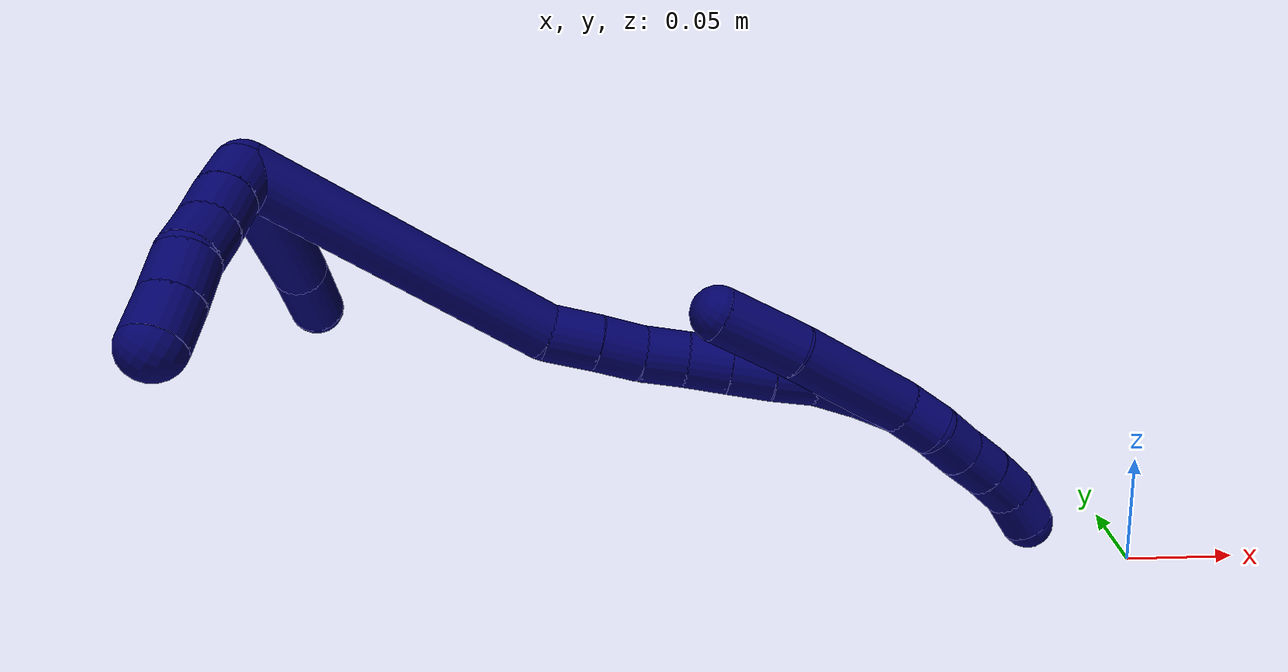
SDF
<sdf version="1.7">
 <world name="default">
  <model name="7">
   <static>0</static>
   <link name="7">
    <collision name="collision-cylinder-e_1_2_8">
     <pose>-0.037699 0.028708 -0.023926 -2.2656 -0.789761 1.45441</pose>
     <geometry><cylinder><radius>0.0125</radius><length>0.106167</length></cylinder></geometry>
     <surface>
      <friction><ode><mu>1.16</mu><mu2>1.16</mu2><slip1>0</slip1><slip2>0</slip2></ode></friction>
      <contact><ode><kp>1e+06</kp><kd>1</kd><max_vel>0</max_vel><min_depth>0.001</min_depth></ode></contact>
     </surface>
    </collision>
    <visual name="visual-cylinder-e_1_2_8">
     <pose>-0.037699 0.028708 -0.023926 -2.2656 -0.789761 1.45441</pose>
     <geometry><cylinder><radius>0.0125</radius><length>0.106167</length></cylinder></geometry>
     <material><ambient>0.003922 0 0.403922 1</ambient></material>
    </visual>
    <collision name="collision-cylinder-e_2_8_6">
     <pose>-0.091452 0.067899 -0.058469 -2.36253 -0.822007 1.6306</pose>
     <geometry><cylinder><radius>0.0125</radius><length>0.043833</length></cylinder></geometry>
     <surface>
      <friction><ode><mu>1.16</mu><mu2>1.16</mu2><slip1>0</slip1><slip2>0</slip2></ode></friction>
      <contact><ode><kp>1e+06</kp><kd>1</kd><max_vel>0</max_vel><min_depth>0.001</min_depth></ode></contact>
     </surface>
    </collision>
    <visual name="visual-cylinder-e_2_8_6">
     <pose>-0.091452 0.067899 -0.058469 -2.36253 -0.822007 1.6306</pose>
     <geometry><cylinder><radius>0.0125</radius><length>0.043833</length></cylinder></geometry>
     <material><ambient>0.003922 0 0.403922 1</ambient></material>
    </visual>
    <collision name="collision-cylinder-e_1_2_9">
     <pose>-0.000563 -0.009955 0.000759 1.49469 -0.056356 -0.052224</pose>
     <geometry><cylinder><radius>0.0125</radius><length>0.02</length></cylinder></geometry>
     <surface>
      <friction><ode><mu>1.16</mu><mu2>1.16</mu2><slip1>0</slip1><slip2>0</slip2></ode></friction>
      <contact><ode><kp>1e+06</kp><kd>1</kd><max_vel>0</max_vel><min_depth>0.001</min_depth></ode></contact>
     </surface>
    </collision>
    <visual name="visual-cylinder-e_1_2_9">
     <pose>-0.000563 -0.009955 0.000759 1.49469 -0.056356 -0.052224</pose>
     <geometry><cylinder><radius>0.0125</radius><length>0.02</length></cylinder></geometry>
     <material><ambient>0.003922 0 0.403922 1</ambient></material>
    </visual>
    <collision name="collision-cylinder-e_2_9_10">
     <pose>-0.001645 -0.029893 0.001787 1.54391 -0.051829 -0.050454</pose>
     <geometry><cylinder><radius>0.0125</radius><length>0.02</length></cylinder></geometry>
     <surface>
      <friction><ode><mu>1.16</mu><mu2>1.16</mu2><slip1>0</slip1><slip2>0</slip2></ode></friction>
      <contact><ode><kp>1e+06</kp><kd>1</kd><max_vel>0</max_vel><min_depth>0.001</min_depth></ode></contact>
     </surface>
    </collision>
    <visual name="visual-cylinder-e_2_9_10">
     <pose>-0.001645 -0.029893 0.001787 1.54391 -0.051829 -0.050454</pose>
     <geometry><cylinder><radius>0.0125</radius><length>0.02</length></cylinder></geometry>
     <material><ambient>0.003922 0 0.403922 1</ambient></material>
    </visual>
    <collision name="collision-cylinder-e_3_10_11">
     <pose>-0.002241 -0.049843 0.002871 1.48908 -0.007854 -0.007237</pose>
     <geometry><cylinder><radius>0.0125</radius><length>0.02</length></cylinder></geometry>
     <surface>
      <friction><ode><mu>1.16</mu><mu2>1.16</mu2><slip1>0</slip1><slip2>0</slip2></ode></friction>
      <contact><ode><kp>1e+06</kp><kd>1</kd><max_vel>0</max_vel><min_depth>0.001</min_depth></ode></contact>
     </surface>
    </collision>
    <visual name="visual-cylinder-e_3_10_11">
     <pose>-0.002241 -0.049843 0.002871 1.48908 -0.007854 -0.007237</pose>
     <geometry><cylinder><radius>0.0125</radius><length>0.02</length></cylinder></geometry>
     <material><ambient>0.003922 0 0.403922 1</ambient></material>
    </visual>
    <collision name="collision-cylinder-e_4_11_12">
     <pose>-0.004456 -0.069522 0.002643 1.67791 -0.215336 -0.23951</pose>
     <geometry><cylinder><radius>0.0125</radius><length>0.02</length></cylinder></geometry>
     <surface>
      <friction><ode><mu>1.16</mu><mu2>1.16</mu2><slip1>0</slip1><slip2>0</slip2></ode></friction>
      <contact><ode><kp>1e+06</kp><kd>1</kd><max_vel>0</max_vel><min_depth>0.001</min_depth></ode></contact>
     </surface>
    </collision>
    <visual name="visual-cylinder-e_4_11_12">
     <pose>-0.004456 -0.069522 0.002643 1.67791 -0.215336 -0.23951</pose>
     <geometry><cylinder><radius>0.0125</radius><length>0.02</length></cylinder></geometry>
     <material><ambient>0.003922 0 0.403922 1</ambient></material>
    </visual>
    <collision name="collision-cylinder-e_5_12_5">
     <pose>-0.008654 -0.088999 0.000946 1.63753 -0.207551 -0.221771</pose>
     <geometry><cylinder><radius>0.0125</radius><length>0.02</length></cylinder></geometry>
     <surface>
      <friction><ode><mu>1.16</mu><mu2>1.16</mu2><slip1>0</slip1><slip2>0</slip2></ode></friction>
      <contact><ode><kp>1e+06</kp><kd>1</kd><max_vel>0</max_vel><min_depth>0.001</min_depth></ode></contact>
     </surface>
    </collision>
    <visual name="visual-cylinder-e_5_12_5">
     <pose>-0.008654 -0.088999 0.000946 1.63753 -0.207551 -0.221771</pose>
     <geometry><cylinder><radius>0.0125</radius><length>0.02</length></cylinder></geometry>
     <material><ambient>0.003922 0 0.403922 1</ambient></material>
    </visual>
    <collision name="collision-cylinder-e_1_2_13">
     <pose>0.002436 2.6e-05 -0.068537 -3.14121 0.035521 -3.11991</pose>
     <geometry><cylinder><radius>0.0125</radius><length>0.13716</length></cylinder></geometry>
     <surface>
      <friction><ode><mu>1.16</mu><mu2>1.16</mu2><slip1>0</slip1><slip2>0</slip2></ode></friction>
      <contact><ode><kp>1e+06</kp><kd>1</kd><max_vel>0</max_vel><min_depth>0.001</min_depth></ode></contact>
     </surface>
    </collision>
    <visual name="visual-cylinder-e_1_2_13">
     <pose>0.002436 2.6e-05 -0.068537 -3.14121 0.035521 -3.11991</pose>
     <geometry><cylinder><radius>0.0125</radius><length>0.13716</length></cylinder></geometry>
     <material><ambient>0.003922 0 0.403922 1</ambient></material>
    </visual>
    <collision name="collision-cylinder-e_2_13_14">
     <pose>0.00858 0.000917 -0.147799 -3.06123 0.331942 -2.6705</pose>
     <geometry><cylinder><radius>0.0125</radius><length>0.022763</length></cylinder></geometry>
     <surface>
      <friction><ode><mu>1.16</mu><mu2>1.16</mu2><slip1>0</slip1><slip2>0</slip2></ode></friction>
      <contact><ode><kp>1e+06</kp><kd>1</kd><max_vel>0</max_vel><min_depth>0.001</min_depth></ode></contact>
     </surface>
    </collision>
    <visual name="visual-cylinder-e_2_13_14">
     <pose>0.00858 0.000917 -0.147799 -3.06123 0.331942 -2.6705</pose>
     <geometry><cylinder><radius>0.0125</radius><length>0.022763</length></cylinder></geometry>
     <material><ambient>0.003922 0 0.403922 1</ambient></material>
    </visual>
    <collision name="collision-cylinder-e_3_14_15">
     <pose>0.015165 0.002567 -0.168106 -3.05964 0.290668 -2.59536</pose>
     <geometry><cylinder><radius>0.0125</radius><length>0.020071</length></cylinder></geometry>
     <surface>
      <friction><ode><mu>1.16</mu><mu2>1.16</mu2><slip1>0</slip1><slip2>0</slip2></ode></friction>
      <contact><ode><kp>1e+06</kp><kd>1</kd><max_vel>0</max_vel><min_depth>0.001</min_depth></ode></contact>
     </surface>
    </collision>
    <visual name="visual-cylinder-e_3_14_15">
     <pose>0.015165 0.002567 -0.168106 -3.05964 0.290668 -2.59536</pose>
     <geometry><cylinder><radius>0.0125</radius><length>0.020071</length></cylinder></geometry>
     <material><ambient>0.003922 0 0.403922 1</ambient></material>
    </visual>
    <collision name="collision-cylinder-e_4_15_16">
     <pose>0.022022 0.004359 -0.186808 -3.03188 0.409379 -2.6244</pose>
     <geometry><cylinder><radius>0.0125</radius><length>0.020001</length></cylinder></geometry>
     <surface>
      <friction><ode><mu>1.16</mu><mu2>1.16</mu2><slip1>0</slip1><slip2>0</slip2></ode></friction>
      <contact><ode><kp>1e+06</kp><kd>1</kd><max_vel>0</max_vel><min_depth>0.001</min_depth></ode></contact>
     </surface>
    </collision>
    <visual name="visual-cylinder-e_4_15_16">
     <pose>0.022022 0.004359 -0.186808 -3.03188 0.409379 -2.6244</pose>
     <geometry><cylinder><radius>0.0125</radius><length>0.020001</length></cylinder></geometry>
     <material><ambient>0.003922 0 0.403922 1</ambient></material>
    </visual>
    <collision name="collision-cylinder-e_5_16_17">
     <pose>0.030551 0.005086 -0.204829 3.11038 0.472116 3.01201</pose>
     <geometry><cylinder><radius>0.0125</radius><length>0.020002</length></cylinder></geometry>
     <surface>
      <friction><ode><mu>1.16</mu><mu2>1.16</mu2><slip1>0</slip1><slip2>0</slip2></ode></friction>
      <contact><ode><kp>1e+06</kp><kd>1</kd><max_vel>0</max_vel><min_depth>0.001</min_depth></ode></contact>
     </surface>
    </collision>
    <visual name="visual-cylinder-e_5_16_17">
     <pose>0.030551 0.005086 -0.204829 3.11038 0.472116 3.01201</pose>
     <geometry><cylinder><radius>0.0125</radius><length>0.020002</length></cylinder></geometry>
     <material><ambient>0.003922 0 0.403922 1</ambient></material>
    </visual>
    <collision name="collision-cylinder-e_6_17_18">
     <pose>0.039614 0.004639 -0.222653 3.12272 0.468421 3.06254</pose>
     <geometry><cylinder><radius>0.0125</radius><length>0.02</length></cylinder></geometry>
     <surface>
      <friction><ode><mu>1.16</mu><mu2>1.16</mu2><slip1>0</slip1><slip2>0</slip2></ode></friction>
      <contact><ode><kp>1e+06</kp><kd>1</kd><max_vel>0</max_vel><min_depth>0.001</min_depth></ode></contact>
     </surface>
    </collision>
    <visual name="visual-cylinder-e_6_17_18">
     <pose>0.039614 0.004639 -0.222653 3.12272 0.468421 3.06254</pose>
     <geometry><cylinder><radius>0.0125</radius><length>0.02</length></cylinder></geometry>
     <material><ambient>0.003922 0 0.403922 1</ambient></material>
    </visual>
    <collision name="collision-cylinder-e_7_18_19">
     <pose>0.0489 0.004797 -0.240357 -3.10445 0.497404 -2.99557</pose>
     <geometry><cylinder><radius>0.0125</radius><length>0.020002</length></cylinder></geometry>
     <surface>
      <friction><ode><mu>1.16</mu><mu2>1.16</mu2><slip1>0</slip1><slip2>0</slip2></ode></friction>
      <contact><ode><kp>1e+06</kp><kd>1</kd><max_vel>0</max_vel><min_depth>0.001</min_depth></ode></contact>
     </surface>
    </collision>
    <visual name="visual-cylinder-e_7_18_19">
     <pose>0.0489 0.004797 -0.240357 -3.10445 0.497404 -2.99557</pose>
     <geometry><cylinder><radius>0.0125</radius><length>0.020002</length></cylinder></geometry>
     <material><ambient>0.003922 0 0.403922 1</ambient></material>
    </visual>
    <collision name="collision-cylinder-e_8_19_20">
     <pose>0.057326 0.004062 -0.258389 3.02731 0.37404 2.55447</pose>
     <geometry><cylinder><radius>0.0125</radius><length>0.02</length></cylinder></geometry>
     <surface>
      <friction><ode><mu>1.16</mu><mu2>1.16</mu2><slip1>0</slip1><slip2>0</slip2></ode></friction>
      <contact><ode><kp>1e+06</kp><kd>1</kd><max_vel>0</max_vel><min_depth>0.001</min_depth></ode></contact>
     </surface>
    </collision>
    <visual name="visual-cylinder-e_8_19_20">
     <pose>0.057326 0.004062 -0.258389 3.02731 0.37404 2.55447</pose>
     <geometry><cylinder><radius>0.0125</radius><length>0.02</length></cylinder></geometry>
     <material><ambient>0.003922 0 0.403922 1</ambient></material>
    </visual>
    <collision name="collision-cylinder-e_9_20_1">
     <pose>0.064313 0.000979 -0.276846 2.9255 0.339769 2.0139</pose>
     <geometry><cylinder><radius>0.0125</radius><length>0.020001</length></cylinder></geometry>
     <surface>
      <friction><ode><mu>1.16</mu><mu2>1.16</mu2><slip1>0</slip1><slip2>0</slip2></ode></friction>
      <contact><ode><kp>1e+06</kp><kd>1</kd><max_vel>0</max_vel><min_depth>0.001</min_depth></ode></contact>
     </surface>
    </collision>
    <visual name="visual-cylinder-e_9_20_1">
     <pose>0.064313 0.000979 -0.276846 2.9255 0.339769 2.0139</pose>
     <geometry><cylinder><radius>0.0125</radius><length>0.020001</length></cylinder></geometry>
     <material><ambient>0.003922 0 0.403922 1</ambient></material>
    </visual>
    <collision name="collision-cylinder-e_1_1_21">
     <pose>0.068116 -0.002504 -0.295937 2.9948 0.047013 0.618974</pose>
     <geometry><cylinder><radius>0.0125</radius><length>0.02</length></cylinder></geometry>
     <surface>
      <friction><ode><mu>1.16</mu><mu2>1.16</mu2><slip1>0</slip1><slip2>0</slip2></ode></friction>
      <contact><ode><kp>1e+06</kp><kd>1</kd><max_vel>0</max_vel><min_depth>0.001</min_depth></ode></contact>
     </surface>
    </collision>
    <visual name="visual-cylinder-e_1_1_21">
     <pose>0.068116 -0.002504 -0.295937 2.9948 0.047013 0.618974</pose>
     <geometry><cylinder><radius>0.0125</radius><length>0.02</length></cylinder></geometry>
     <material><ambient>0.003922 0 0.403922 1</ambient></material>
    </visual>
    <collision name="collision-cylinder-e_2_21_22">
     <pose>0.066929 -0.003282 -0.315657 -3.07233 -0.16647 2.35439</pose>
     <geometry><cylinder><radius>0.0125</radius><length>0.02</length></cylinder></geometry>
     <surface>
      <friction><ode><mu>1.16</mu><mu2>1.16</mu2><slip1>0</slip1><slip2>0</slip2></ode></friction>
      <contact><ode><kp>1e+06</kp><kd>1</kd><max_vel>0</max_vel><min_depth>0.001</min_depth></ode></contact>
     </surface>
    </collision>
    <visual name="visual-cylinder-e_2_21_22">
     <pose>0.066929 -0.003282 -0.315657 -3.07233 -0.16647 2.35439</pose>
     <geometry><cylinder><radius>0.0125</radius><length>0.02</length></cylinder></geometry>
     <material><ambient>0.003922 0 0.403922 1</ambient></material>
    </visual>
    <collision name="collision-cylinder-e_3_22_23">
     <pose>0.064039 -0.001828 -0.335389 -3.06379 -0.123549 2.01829</pose>
     <geometry><cylinder><radius>0.0125</radius><length>0.02</length></cylinder></geometry>
     <surface>
      <friction><ode><mu>1.16</mu><mu2>1.16</mu2><slip1>0</slip1><slip2>0</slip2></ode></friction>
      <contact><ode><kp>1e+06</kp><kd>1</kd><max_vel>0</max_vel><min_depth>0.001</min_depth></ode></contact>
     </surface>
    </collision>
    <visual name="visual-cylinder-e_3_22_23">
     <pose>0.064039 -0.001828 -0.335389 -3.06379 -0.123549 2.01829</pose>
     <geometry><cylinder><radius>0.0125</radius><length>0.02</length></cylinder></geometry>
     <material><ambient>0.003922 0 0.403922 1</ambient></material>
    </visual>
    <collision name="collision-cylinder-e_4_23_24">
     <pose>0.060965 -0.000714 -0.355105 -3.10673 -0.185209 2.77051</pose>
     <geometry><cylinder><radius>0.0125</radius><length>0.02</length></cylinder></geometry>
     <surface>
      <friction><ode><mu>1.16</mu><mu2>1.16</mu2><slip1>0</slip1><slip2>0</slip2></ode></friction>
      <contact><ode><kp>1e+06</kp><kd>1</kd><max_vel>0</max_vel><min_depth>0.001</min_depth></ode></contact>
     </surface>
    </collision>
    <visual name="visual-cylinder-e_4_23_24">
     <pose>0.060965 -0.000714 -0.355105 -3.10673 -0.185209 2.77051</pose>
     <geometry><cylinder><radius>0.0125</radius><length>0.02</length></cylinder></geometry>
     <material><ambient>0.003922 0 0.403922 1</ambient></material>
    </visual>
    <collision name="collision-cylinder-e_5_24_4">
     <pose>0.055573 -0.001963 -0.37414 2.97055 -0.363008 -2.26755</pose>
     <geometry><cylinder><radius>0.0125</radius><length>0.02</length></cylinder></geometry>
     <surface>
      <friction><ode><mu>1.16</mu><mu2>1.16</mu2><slip1>0</slip1><slip2>0</slip2></ode></friction>
      <contact><ode><kp>1e+06</kp><kd>1</kd><max_vel>0</max_vel><min_depth>0.001</min_depth></ode></contact>
     </surface>
    </collision>
    <visual name="visual-cylinder-e_5_24_4">
     <pose>0.055573 -0.001963 -0.37414 2.97055 -0.363008 -2.26755</pose>
     <geometry><cylinder><radius>0.0125</radius><length>0.02</length></cylinder></geometry>
     <material><ambient>0.003922 0 0.403922 1</ambient></material>
    </visual>
    <collision name="collision-cylinder-e_1_1_25">
     <pose>0.067058 -0.003485 -0.255849 0.080674 -0.019393 -0.000783</pose>
     <geometry><cylinder><radius>0.0125</radius><length>0.060621</length></cylinder></geometry>
     <surface>
      <friction><ode><mu>1.16</mu><mu2>1.16</mu2><slip1>0</slip1><slip2>0</slip2></ode></friction>
      <contact><ode><kp>1e+06</kp><kd>1</kd><max_vel>0</max_vel><min_depth>0.001</min_depth></ode></contact>
     </surface>
    </collision>
    <visual name="visual-cylinder-e_1_1_25">
     <pose>0.067058 -0.003485 -0.255849 0.080674 -0.019393 -0.000783</pose>
     <geometry><cylinder><radius>0.0125</radius><length>0.060621</length></cylinder></geometry>
     <material><ambient>0.003922 0 0.403922 1</ambient></material>
    </visual>
    <collision name="collision-cylinder-e_2_25_3">
     <pose>0.064078 -0.005962 -0.206099 0.001788 -0.121814 -0.000109</pose>
     <geometry><cylinder><radius>0.0125</radius><length>0.039379</length></cylinder></geometry>
     <surface>
      <friction><ode><mu>1.16</mu><mu2>1.16</mu2><slip1>0</slip1><slip2>0</slip2></ode></friction>
      <contact><ode><kp>1e+06</kp><kd>1</kd><max_vel>0</max_vel><min_depth>0.001</min_depth></ode></contact>
     </surface>
    </collision>
    <visual name="visual-cylinder-e_2_25_3">
     <pose>0.064078 -0.005962 -0.206099 0.001788 -0.121814 -0.000109</pose>
     <geometry><cylinder><radius>0.0125</radius><length>0.039379</length></cylinder></geometry>
     <material><ambient>0.003922 0 0.403922 1</ambient></material>
    </visual>
    <collision name="collision-sphere-3">
     <pose>0.061685 -0.005997 -0.186556 0 -0 0</pose>
     <geometry><sphere><radius>0.0125</radius></sphere></geometry>
     <surface>
      <friction><ode><mu>1.16</mu><mu2>1.16</mu2><slip1>0</slip1><slip2>0</slip2></ode></friction>
      <contact><ode><kp>1e+06</kp><kd>1</kd><max_vel>0</max_vel><min_depth>0.001</min_depth></ode></contact>
     </surface>
    </collision>
    <visual name="visual-sphere-3">
     <pose>0.061685 -0.005997 -0.186556 0 -0 0</pose>
     <geometry><sphere><radius>0.0125</radius></sphere></geometry>
     <material><ambient>0.003922 0 0.403922 1</ambient></material>
    </visual>
    <collision name="collision-sphere-25">
     <pose>0.06647 -0.005927 -0.225643 0 -0 0</pose>
     <geometry><sphere><radius>0.0125</radius></sphere></geometry>
     <surface>
      <friction><ode><mu>1.16</mu><mu2>1.16</mu2><slip1>0</slip1><slip2>0</slip2></ode></friction>
      <contact><ode><kp>1e+06</kp><kd>1</kd><max_vel>0</max_vel><min_depth>0.001</min_depth></ode></contact>
     </surface>
    </collision>
    <visual name="visual-sphere-25">
     <pose>0.06647 -0.005927 -0.225643 0 -0 0</pose>
     <geometry><sphere><radius>0.0125</radius></sphere></geometry>
     <material><ambient>0.003922 0 0.403922 1</ambient></material>
    </visual>
    <collision name="collision-sphere-4">
     <pose>0.052022 -0.003554 -0.383352 0 -0 0</pose>
     <geometry><sphere><radius>0.0125</radius></sphere></geometry>
     <surface>
      <friction><ode><mu>1.16</mu><mu2>1.16</mu2><slip1>0</slip1><slip2>0</slip2></ode></friction>
      <contact><ode><kp>1e+06</kp><kd>1</kd><max_vel>0</max_vel><min_depth>0.001</min_depth></ode></contact>
     </surface>
    </collision>
    <visual name="visual-sphere-4">
     <pose>0.052022 -0.003554 -0.383352 0 -0 0</pose>
     <geometry><sphere><radius>0.0125</radius></sphere></geometry>
     <material><ambient>0.003922 0 0.403922 1</ambient></material>
    </visual>
    <collision name="collision-sphere-24">
     <pose>0.059124 -0.000372 -0.364928 0 -0 0</pose>
     <geometry><sphere><radius>0.0125</radius></sphere></geometry>
     <surface>
      <friction><ode><mu>1.16</mu><mu2>1.16</mu2><slip1>0</slip1><slip2>0</slip2></ode></friction>
      <contact><ode><kp>1e+06</kp><kd>1</kd><max_vel>0</max_vel><min_depth>0.001</min_depth></ode></contact>
     </surface>
    </collision>
    <visual name="visual-sphere-24">
     <pose>0.059124 -0.000372 -0.364928 0 -0 0</pose>
     <geometry><sphere><radius>0.0125</radius></sphere></geometry>
     <material><ambient>0.003922 0 0.403922 1</ambient></material>
    </visual>
    <collision name="collision-sphere-23">
     <pose>0.062807 -0.001057 -0.345282 0 -0 0</pose>
     <geometry><sphere><radius>0.0125</radius></sphere></geometry>
     <surface>
      <friction><ode><mu>1.16</mu><mu2>1.16</mu2><slip1>0</slip1><slip2>0</slip2></ode></friction>
      <contact><ode><kp>1e+06</kp><kd>1</kd><max_vel>0</max_vel><min_depth>0.001</min_depth></ode></contact>
     </surface>
    </collision>
    <visual name="visual-sphere-23">
     <pose>0.062807 -0.001057 -0.345282 0 -0 0</pose>
     <geometry><sphere><radius>0.0125</radius></sphere></geometry>
     <material><ambient>0.003922 0 0.403922 1</ambient></material>
    </visual>
    <collision name="collision-sphere-22">
     <pose>0.065272 -0.0026 -0.325495 0 -0 0</pose>
     <geometry><sphere><radius>0.0125</radius></sphere></geometry>
     <surface>
      <friction><ode><mu>1.16</mu><mu2>1.16</mu2><slip1>0</slip1><slip2>0</slip2></ode></friction>
      <contact><ode><kp>1e+06</kp><kd>1</kd><max_vel>0</max_vel><min_depth>0.001</min_depth></ode></contact>
     </surface>
    </collision>
    <visual name="visual-sphere-22">
     <pose>0.065272 -0.0026 -0.325495 0 -0 0</pose>
     <geometry><sphere><radius>0.0125</radius></sphere></geometry>
     <material><ambient>0.003922 0 0.403922 1</ambient></material>
    </visual>
    <collision name="collision-sphere-21">
     <pose>0.068586 -0.003965 -0.305819 0 -0 0</pose>
     <geometry><sphere><radius>0.0125</radius></sphere></geometry>
     <surface>
      <friction><ode><mu>1.16</mu><mu2>1.16</mu2><slip1>0</slip1><slip2>0</slip2></ode></friction>
      <contact><ode><kp>1e+06</kp><kd>1</kd><max_vel>0</max_vel><min_depth>0.001</min_depth></ode></contact>
     </surface>
    </collision>
    <visual name="visual-sphere-21">
     <pose>0.068586 -0.003965 -0.305819 0 -0 0</pose>
     <geometry><sphere><radius>0.0125</radius></sphere></geometry>
     <material><ambient>0.003922 0 0.403922 1</ambient></material>
    </visual>
    <collision name="collision-sphere-1">
     <pose>0.067646 -0.001043 -0.286055 0 -0 0</pose>
     <geometry><sphere><radius>0.0125</radius></sphere></geometry>
     <surface>
      <friction><ode><mu>1.16</mu><mu2>1.16</mu2><slip1>0</slip1><slip2>0</slip2></ode></friction>
      <contact><ode><kp>1e+06</kp><kd>1</kd><max_vel>0</max_vel><min_depth>0.001</min_depth></ode></contact>
     </surface>
    </collision>
    <visual name="visual-sphere-1">
     <pose>0.067646 -0.001043 -0.286055 0 -0 0</pose>
     <geometry><sphere><radius>0.0125</radius></sphere></geometry>
     <material><ambient>0.003922 0 0.403922 1</ambient></material>
    </visual>
    <collision name="collision-sphere-11">
     <pose>-0.00232 -0.059809 0.003688 0 -0 0</pose>
     <geometry><sphere><radius>0.0125</radius></sphere></geometry>
     <surface>
      <friction><ode><mu>1.16</mu><mu2>1.16</mu2><slip1>0</slip1><slip2>0</slip2></ode></friction>
      <contact><ode><kp>1e+06</kp><kd>1</kd><max_vel>0</max_vel><min_depth>0.001</min_depth></ode></contact>
     </surface>
    </collision>
    <visual name="visual-sphere-11">
     <pose>-0.00232 -0.059809 0.003688 0 -0 0</pose>
     <geometry><sphere><radius>0.0125</radius></sphere></geometry>
     <material><ambient>0.003922 0 0.403922 1</ambient></material>
    </visual>
    <collision name="collision-sphere-10">
     <pose>-0.002163 -0.039876 0.002055 0 -0 0</pose>
     <geometry><sphere><radius>0.0125</radius></sphere></geometry>
     <surface>
      <friction><ode><mu>1.16</mu><mu2>1.16</mu2><slip1>0</slip1><slip2>0</slip2></ode></friction>
      <contact><ode><kp>1e+06</kp><kd>1</kd><max_vel>0</max_vel><min_depth>0.001</min_depth></ode></contact>
     </surface>
    </collision>
    <visual name="visual-sphere-10">
     <pose>-0.002163 -0.039876 0.002055 0 -0 0</pose>
     <geometry><sphere><radius>0.0125</radius></sphere></geometry>
     <material><ambient>0.003922 0 0.403922 1</ambient></material>
    </visual>
    <collision name="collision-sphere-6">
     <pose>-0.107506 0.078382 -0.069086 0 -0 0</pose>
     <geometry><sphere><radius>0.0125</radius></sphere></geometry>
     <surface>
      <friction><ode><mu>1.16</mu><mu2>1.16</mu2><slip1>0</slip1><slip2>0</slip2></ode></friction>
      <contact><ode><kp>1e+06</kp><kd>1</kd><max_vel>0</max_vel><min_depth>0.001</min_depth></ode></contact>
     </surface>
    </collision>
    <visual name="visual-sphere-6">
     <pose>-0.107506 0.078382 -0.069086 0 -0 0</pose>
     <geometry><sphere><radius>0.0125</radius></sphere></geometry>
     <material><ambient>0.003922 0 0.403922 1</ambient></material>
    </visual>
    <collision name="collision-sphere-9">
     <pose>-0.001127 -0.01991 0.001518 0 -0 0</pose>
     <geometry><sphere><radius>0.0125</radius></sphere></geometry>
     <surface>
      <friction><ode><mu>1.16</mu><mu2>1.16</mu2><slip1>0</slip1><slip2>0</slip2></ode></friction>
      <contact><ode><kp>1e+06</kp><kd>1</kd><max_vel>0</max_vel><min_depth>0.001</min_depth></ode></contact>
     </surface>
    </collision>
    <visual name="visual-sphere-9">
     <pose>-0.001127 -0.01991 0.001518 0 -0 0</pose>
     <geometry><sphere><radius>0.0125</radius></sphere></geometry>
     <material><ambient>0.003922 0 0.403922 1</ambient></material>
    </visual>
    <collision name="collision-sphere-2">
     <geometry><sphere><radius>0.0125</radius></sphere></geometry>
     <surface>
      <friction><ode><mu>1.16</mu><mu2>1.16</mu2><slip1>0</slip1><slip2>0</slip2></ode></friction>
      <contact><ode><kp>1e+06</kp><kd>1</kd><max_vel>0</max_vel><min_depth>0.001</min_depth></ode></contact>
     </surface>
    </collision>
    <visual name="visual-sphere-2">
     <geometry><sphere><radius>0.0125</radius></sphere></geometry>
     <material><ambient>0.003922 0 0.403922 1</ambient></material>
    </visual>
    <collision name="collision-sphere-19">
     <pose>0.053672 0.005124 -0.24914 0 -0 0</pose>
     <geometry><sphere><radius>0.0125</radius></sphere></geometry>
     <surface>
      <friction><ode><mu>1.16</mu><mu2>1.16</mu2><slip1>0</slip1><slip2>0</slip2></ode></friction>
      <contact><ode><kp>1e+06</kp><kd>1</kd><max_vel>0</max_vel><min_depth>0.001</min_depth></ode></contact>
     </surface>
    </collision>
    <visual name="visual-sphere-19">
     <pose>0.053672 0.005124 -0.24914 0 -0 0</pose>
     <geometry><sphere><radius>0.0125</radius></sphere></geometry>
     <material><ambient>0.003922 0 0.403922 1</ambient></material>
    </visual>
    <collision name="collision-sphere-8">
     <pose>-0.075398 0.057416 -0.047853 0 -0 0</pose>
     <geometry><sphere><radius>0.0125</radius></sphere></geometry>
     <surface>
      <friction><ode><mu>1.16</mu><mu2>1.16</mu2><slip1>0</slip1><slip2>0</slip2></ode></friction>
      <contact><ode><kp>1e+06</kp><kd>1</kd><max_vel>0</max_vel><min_depth>0.001</min_depth></ode></contact>
     </surface>
    </collision>
    <visual name="visual-sphere-8">
     <pose>-0.075398 0.057416 -0.047853 0 -0 0</pose>
     <geometry><sphere><radius>0.0125</radius></sphere></geometry>
     <material><ambient>0.003922 0 0.403922 1</ambient></material>
    </visual>
    <collision name="collision-sphere-12">
     <pose>-0.006593 -0.079235 0.001599 0 -0 0</pose>
     <geometry><sphere><radius>0.0125</radius></sphere></geometry>
     <surface>
      <friction><ode><mu>1.16</mu><mu2>1.16</mu2><slip1>0</slip1><slip2>0</slip2></ode></friction>
      <contact><ode><kp>1e+06</kp><kd>1</kd><max_vel>0</max_vel><min_depth>0.001</min_depth></ode></contact>
     </surface>
    </collision>
    <visual name="visual-sphere-12">
     <pose>-0.006593 -0.079235 0.001599 0 -0 0</pose>
     <geometry><sphere><radius>0.0125</radius></sphere></geometry>
     <material><ambient>0.003922 0 0.403922 1</ambient></material>
    </visual>
    <collision name="collision-sphere-5">
     <pose>-0.010715 -0.098762 0.000294 0 -0 0</pose>
     <geometry><sphere><radius>0.0125</radius></sphere></geometry>
     <surface>
      <friction><ode><mu>1.16</mu><mu2>1.16</mu2><slip1>0</slip1><slip2>0</slip2></ode></friction>
      <contact><ode><kp>1e+06</kp><kd>1</kd><max_vel>0</max_vel><min_depth>0.001</min_depth></ode></contact>
     </surface>
    </collision>
    <visual name="visual-sphere-5">
     <pose>-0.010715 -0.098762 0.000294 0 -0 0</pose>
     <geometry><sphere><radius>0.0125</radius></sphere></geometry>
     <material><ambient>0.003922 0 0.403922 1</ambient></material>
    </visual>
    <collision name="collision-sphere-13">
     <pose>0.004871 5.3e-05 -0.137073 0 -0 0</pose>
     <geometry><sphere><radius>0.0125</radius></sphere></geometry>
     <surface>
      <friction><ode><mu>1.16</mu><mu2>1.16</mu2><slip1>0</slip1><slip2>0</slip2></ode></friction>
      <contact><ode><kp>1e+06</kp><kd>1</kd><max_vel>0</max_vel><min_depth>0.001</min_depth></ode></contact>
     </surface>
    </collision>
    <visual name="visual-sphere-13">
     <pose>0.004871 5.3e-05 -0.137073 0 -0 0</pose>
     <geometry><sphere><radius>0.0125</radius></sphere></geometry>
     <material><ambient>0.003922 0 0.403922 1</ambient></material>
    </visual>
    <collision name="collision-sphere-14">
     <pose>0.012289 0.00178 -0.158524 0 -0 0</pose>
     <geometry><sphere><radius>0.0125</radius></sphere></geometry>
     <surface>
      <friction><ode><mu>1.16</mu><mu2>1.16</mu2><slip1>0</slip1><slip2>0</slip2></ode></friction>
      <contact><ode><kp>1e+06</kp><kd>1</kd><max_vel>0</max_vel><min_depth>0.001</min_depth></ode></contact>
     </surface>
    </collision>
    <visual name="visual-sphere-14">
     <pose>0.012289 0.00178 -0.158524 0 -0 0</pose>
     <geometry><sphere><radius>0.0125</radius></sphere></geometry>
     <material><ambient>0.003922 0 0.403922 1</ambient></material>
    </visual>
    <collision name="collision-sphere-15">
     <pose>0.018041 0.003354 -0.177689 0 -0 0</pose>
     <geometry><sphere><radius>0.0125</radius></sphere></geometry>
     <surface>
      <friction><ode><mu>1.16</mu><mu2>1.16</mu2><slip1>0</slip1><slip2>0</slip2></ode></friction>
      <contact><ode><kp>1e+06</kp><kd>1</kd><max_vel>0</max_vel><min_depth>0.001</min_depth></ode></contact>
     </surface>
    </collision>
    <visual name="visual-sphere-15">
     <pose>0.018041 0.003354 -0.177689 0 -0 0</pose>
     <geometry><sphere><radius>0.0125</radius></sphere></geometry>
     <material><ambient>0.003922 0 0.403922 1</ambient></material>
    </visual>
    <collision name="collision-sphere-16">
     <pose>0.026003 0.005364 -0.195927 0 -0 0</pose>
     <geometry><sphere><radius>0.0125</radius></sphere></geometry>
     <surface>
      <friction><ode><mu>1.16</mu><mu2>1.16</mu2><slip1>0</slip1><slip2>0</slip2></ode></friction>
      <contact><ode><kp>1e+06</kp><kd>1</kd><max_vel>0</max_vel><min_depth>0.001</min_depth></ode></contact>
     </surface>
    </collision>
    <visual name="visual-sphere-16">
     <pose>0.026003 0.005364 -0.195927 0 -0 0</pose>
     <geometry><sphere><radius>0.0125</radius></sphere></geometry>
     <material><ambient>0.003922 0 0.403922 1</ambient></material>
    </visual>
    <collision name="collision-sphere-17">
     <pose>0.035099 0.004808 -0.213732 0 -0 0</pose>
     <geometry><sphere><radius>0.0125</radius></sphere></geometry>
     <surface>
      <friction><ode><mu>1.16</mu><mu2>1.16</mu2><slip1>0</slip1><slip2>0</slip2></ode></friction>
      <contact><ode><kp>1e+06</kp><kd>1</kd><max_vel>0</max_vel><min_depth>0.001</min_depth></ode></contact>
     </surface>
    </collision>
    <visual name="visual-sphere-17">
     <pose>0.035099 0.004808 -0.213732 0 -0 0</pose>
     <geometry><sphere><radius>0.0125</radius></sphere></geometry>
     <material><ambient>0.003922 0 0.403922 1</ambient></material>
    </visual>
    <collision name="collision-sphere-18">
     <pose>0.044128 0.004471 -0.231575 0 -0 0</pose>
     <geometry><sphere><radius>0.0125</radius></sphere></geometry>
     <surface>
      <friction><ode><mu>1.16</mu><mu2>1.16</mu2><slip1>0</slip1><slip2>0</slip2></ode></friction>
      <contact><ode><kp>1e+06</kp><kd>1</kd><max_vel>0</max_vel><min_depth>0.001</min_depth></ode></contact>
     </surface>
    </collision>
    <visual name="visual-sphere-18">
     <pose>0.044128 0.004471 -0.231575 0 -0 0</pose>
     <geometry><sphere><radius>0.0125</radius></sphere></geometry>
     <material><ambient>0.003922 0 0.403922 1</ambient></material>
    </visual>
    <collision name="collision-sphere-20">
     <pose>0.06098 0.003001 -0.267637 0 -0 0</pose>
     <geometry><sphere><radius>0.0125</radius></sphere></geometry>
     <surface>
      <friction><ode><mu>1.16</mu><mu2>1.16</mu2><slip1>0</slip1><slip2>0</slip2></ode></friction>
      <contact><ode><kp>1e+06</kp><kd>1</kd><max_vel>0</max_vel><min_depth>0.001</min_depth></ode></contact>
     </surface>
    </collision>
    <visual name="visual-sphere-20">
     <pose>0.06098 0.003001 -0.267637 0 -0 0</pose>
     <geometry><sphere><radius>0.0125</radius></sphere></geometry>
     <material><ambient>0.003922 0 0.403922 1</ambient></material>
    </visual>
    <inertial>
     <pose>0.01417 0.001283 -0.141348 0 -0 0</pose>
     <mass>0.75</mass>
     <inertia><ixx>-0.00012</ixx><ixy>0</ixy><ixz>0</ixz><iyy>0.000388</iyy><iyz>0</iyz><izz>-8e-06</izz></inertia>
    </inertial>
   </link>
   <pose>-0.37864 -0.041749 0.196292 0.578135 -0.81082 -0.472082</pose>
  </model>
 </world>
</sdf>
